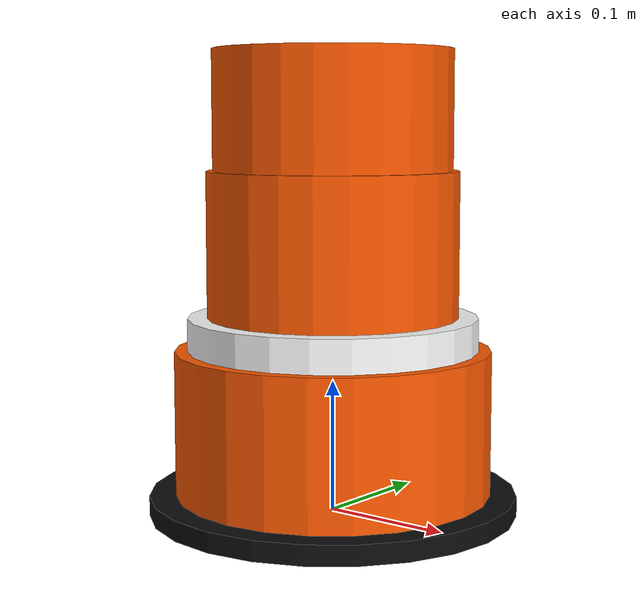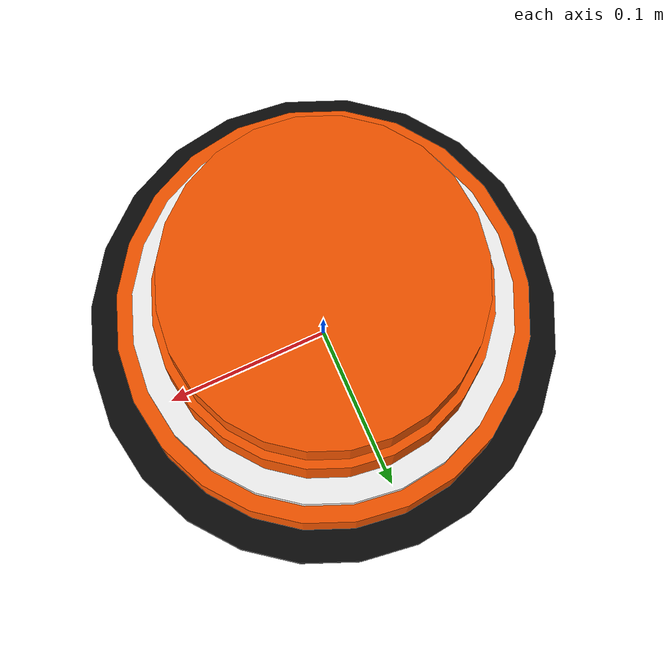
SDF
<?xml version="1.0" ?>
<sdf version="1.7">
  <model name="traffic_cone_35cm">
    <static>false</static>

    <link name="cone_link">
      <!-- 대략적 관성 -->
      <inertial>
        <mass>0.5</mass>
        <inertia>
          <ixx>0.005</ixx><iyy>0.005</iyy><izz>0.005</izz>
          <ixy>0</ixy><ixz>0</ixz><iyz>0</iyz>
        </inertia>
      </inertial>

      <!-- === Collision (간단화) ======================================= -->
      <!-- 바닥 고무(두께 0.015 m) -->
      <collision name="col_base">
        <pose>0 0 0.0075 0 0 0</pose>
        <geometry><cylinder><radius>0.14</radius><length>0.015</length></cylinder></geometry>
      </collision>

      <!-- 몸통 전체를 하나의 원기둥 충돌로 단순화 (길이 0.33 m) -->
      <collision name="col_body">
        <pose>0 0 0.18 0 0 0</pose>
        <geometry><cylinder><radius>0.10</radius><length>0.33</length></cylinder></geometry>
      </collision>

      <!-- === Visual (총 높이 ≈ 0.35 m) ================================ -->
      <!-- 0) 바닥 고무(0.015 m) -->
      <visual name="vis_base">
        <pose>0 0 0.0075 0 0 0</pose>
        <geometry><cylinder><radius>0.14</radius><length>0.015</length></cylinder></geometry>
        <material><ambient>0.05 0.05 0.05 1</ambient><diffuse>0.05 0.05 0.05 1</diffuse></material>
      </visual>

      <!-- 1) 하부 주황(0.11 m, r=0.12) -->
      <visual name="vis_lower_orange">
        <pose>0 0 0.070 0 0 0</pose>
        <geometry><cylinder><radius>0.12</radius><length>0.11</length></cylinder></geometry>
        <material><ambient>1 0.35 0 1</ambient><diffuse>1 0.35 0 1</diffuse></material>
      </visual>

      <visual name="vis_white_band">
        <pose>0 0 0.1375 0 0 0</pose>
        <geometry><cylinder><radius>0.11</radius><length>0.025</length></cylinder></geometry>
        <material><ambient>1 1 1 1</ambient><diffuse>1 1 1 1</diffuse></material>
      </visual>

      <!-- 3) 중부 주황(0.11 m, r=0.095) -->
      <visual name="vis_mid_orange">
        <pose>0 0 0.205 0 0 0</pose>
        <geometry><cylinder><radius>0.095</radius><length>0.11</length></cylinder></geometry>
        <material><ambient>1 0.35 0 1</ambient><diffuse>1 0.35 0 1</diffuse></material>
      </visual>

      <!-- 4) 상부 주황(0.09 m, r=0.07)  → 최상단이 0.35 m -->
      <visual name="vis_top_orange">
        <pose>0 0 0.305 0 0 0</pose>
        <geometry><cylinder><radius>0.09</radius><length>0.09</length></cylinder></geometry>
        <material><ambient>1 0.35 0 1</ambient><diffuse>1 0.35 0 1</diffuse></material>
      </visual>

    </link>
  </model>
</sdf>
